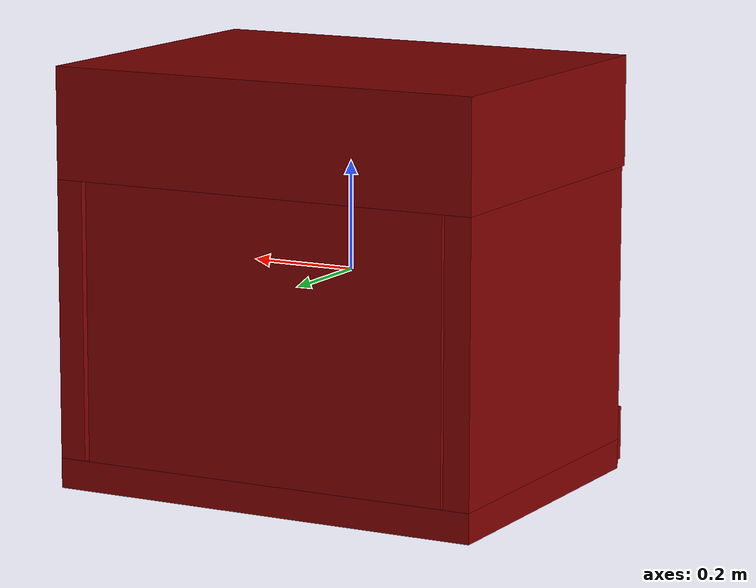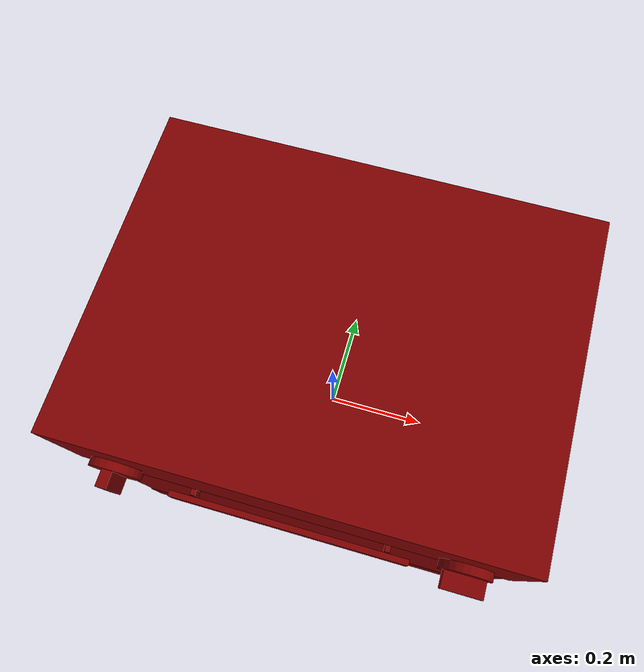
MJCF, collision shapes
<?xml version='1.0' encoding='UTF-8'?>
<mujoco model="model">
  <option timestep="0.002" gravity="0.0 0.0 -9.81"/>
  <compiler angle="radian"/>
  <asset>
    <mesh file="visuals/door.obj" name="door_vis"/>
    <mesh file="visuals/door_Clear.obj" name="door_Clear_vis"/>
    <mesh file="visuals/knob_temp.obj" name="knob_temp_vis"/>
    <mesh file="visuals/knob_time.obj" name="knob_time_vis"/>
    <mesh file="visuals/Body001.obj" name="Body001_vis"/>
    <mesh file="visuals/rack0.obj" name="rack0_vis"/>
    <texture file="visuals/T_BC001.png" name="Body001_material" type="2d"/>
    <material name="Body001_material" rgba="1 1 1 1.0" texture="Body001_material" shininess="3" specular="3"/>
    <texture file="visuals/T_BC001.png" name="door_material" type="2d"/>
    <material name="door_material" rgba="1 1 1 1.0" texture="door_material" shininess="3" specular="3"/>
    <texture file="visuals/T_BC001.png" name="door_Clear_material" type="2d"/>
    <material name="door_Clear_material" rgba="1 1 1 0.75" texture="door_Clear_material" shininess="0.4472135901451111" specular="0.3103448502657381"/>
    <texture file="visuals/T_BC001.png" name="knob_temp_material" type="2d"/>
    <material name="knob_temp_material" rgba="1 1 1 1.0" texture="knob_temp_material" shininess="1" specular="1"/>
    <texture file="visuals/T_BC001.png" name="knob_time_material" type="2d"/>
    <material name="knob_time_material" rgba="1 1 1 1.0" texture="knob_time_material" shininess="1" specular="1"/>
    <texture file="visuals/T_BC001.png" name="rack0_material" type="2d"/>
    <material name="rack0_material" rgba="1 1 1 1.0" texture="rack0_material" shininess="15" specular="15"/>
  </asset>
  <default>
    <default class="visual">
      <geom conaffinity="0" contype="0" group="1" type="mesh"/>
    </default>
    <default class="collision">
      <geom group="0" rgba="0.5 0 0 0.5"/>
    </default>
    <default class="spawn">
      <geom group="0" rgba="1 1 1 0.5" contype="0" conaffinity="0"/>
      <site group="0" rgba="1 1 1 0.5"/>
    </default>
    <default class="region">
      <geom group="1" conaffinity="0" contype="0" rgba="0 1 0 0"/>
    </default>
  </default>
  <worldbody>
    <body>
      <body name="object">
        <geom mesh="Body001_vis" type="mesh" solimp="0.998 0.998 0.001" solref="0.001 1" friction="0.95 0.3 0.1" class="visual" material="Body001_material"/>
        <geom class="collision" type="box" pos="-1.3451790437102318e-07 0.025494296103715897 0.28531554341316223" size="0.4151008427143097 0.3159112334251404 0.10254225134849548" quat="1.0 0.0 0.0 0.0"/>
        <geom class="collision" type="box" pos="-0.389858603477478 0.03126455098390579 -0.10019868612289429" size="0.02524236962199211 0.31014084815979004 0.2864428162574768" quat="1.0 0.0 0.0 0.0"/>
        <geom class="collision" type="box" pos="0.3898361623287201 0.031546588987112045 -0.10118450969457626" size="0.025264495983719826 0.3098587989807129 0.28545698523521423" quat="1.0 0.0 0.0 0.0"/>
        <geom class="collision" type="box" pos="-0.0021170482505112886 0.25647830963134766 -0.09893342107534409" size="0.3579273521900177 0.08492651581764221 0.2877080738544464" quat="1.0 0.0 0.0 0.0"/>
        <geom class="collision" type="box" pos="-1.3451790437102318e-07 -0.28395211696624756 -0.32180142402648926" size="0.41510090231895447 0.006464633625000715 0.04997134208679199" quat="1.0 0.0 0.0 0.0"/>
        <geom class="collision" type="box" pos="-1.3451790437102318e-07 0.031764399260282516 -0.3600442409515381" size="0.41510099172592163 0.3096410036087036 0.02779778651893139" quat="1.0 0.0 0.0 0.0"/>
        <geom class="collision" type="box" pos="-0.34609663486480713 -0.0572015717625618 0.03111422061920166" size="0.016483696177601814 0.1967303305864334 0.008244330063462257" quat="7.907536314633035e-07 0.0 0.0 1.0"/>
        <geom class="collision" type="box" pos="0.3470178246498108 -0.0572015717625618 -0.03945142403244972" size="0.016483673825860023 0.1967303305864334 0.01336018368601799" quat="7.907536314633035e-07 0.0 0.0 1.0"/>
        <geom class="collision" type="box" pos="-0.34609663486480713 -0.0572015717625618 -0.0687035620212555" size="0.016483696177601814 0.1967303305864334 0.005152175202965736" quat="7.907536314633035e-07 0.0 0.0 1.0"/>
        <geom class="collision" type="box" pos="0.3470178246498108 -0.0572015717625618 -0.1655743420124054" size="0.016483673825860023 0.1967303305864334 0.013375923968851566" quat="7.907536314633035e-07 0.0 0.0 1.0"/>
        <geom class="collision" type="box" pos="0.3470178246498108 -0.0572015717625618 0.03111422061920166" size="0.016483673825860023 0.1967303305864334 0.008244330063462257" quat="7.907536314633035e-07 0.0 0.0 1.0"/>
        <geom class="collision" type="box" pos="-0.34609663486480713 -0.0572015717625618 -0.03945142403244972" size="0.016483696177601814 0.1967303305864334 0.01336018368601799" quat="7.907536314633035e-07 0.0 0.0 1.0"/>
        <geom class="collision" type="box" pos="0.3470178246498108 -0.0572015717625618 -0.0687035620212555" size="0.016483673825860023 0.1967303305864334 0.005152175202965736" quat="7.907536314633035e-07 0.0 0.0 1.0"/>
        <geom class="collision" type="box" pos="-0.34609663486480713 -0.0572015717625618 -0.1655743420124054" size="0.016483696177601814 0.1967303305864334 0.013375923968851566" quat="7.907536314633035e-07 0.0 0.0 1.0"/>
        <geom class="collision" type="box" pos="0.3470178246498108 -0.0572015717625618 -0.23034867644309998" size="0.016483673825860023 0.1967303305864334 0.005326995626091957" quat="7.907536314633035e-07 0.0 0.0 1.0"/>
        <geom class="collision" type="box" pos="-0.34609663486480713 -0.0572015717625618 -0.2303524762392044" size="0.016483696177601814 0.1967303305864334 0.005323205143213272" quat="7.907536314633035e-07 0.0 0.0 1.0"/>
        <geom class="collision" type="box" pos="-0.001781865837983787 0.026348192244768143 0.16305921971797943" size="0.35844725370407104 0.3046603798866272 0.02095574140548706" quat="1.0 0.0 0.0 0.0"/>
        <body name="door">
          <joint axis="1.0 0.0 0.0" pos="-0.0005076003144495189 -0.28888482414186 -0.2668597884476185" limited="true" name="door_joint" range="0.0 1.15" type="hinge" damping="1" frictionloss="1" armature="1" stiffness="2"/>
          <geom mesh="door_vis" type="mesh" solimp="0.998 0.998 0.001" solref="0.001 1" friction="0.95 0.3 0.1" class="visual" material="door_material"/>
          <geom class="collision" type="box" pos="-0.00023717973090242594 -0.2847718298435211 -0.04473878815770149" size="0.40955543518066406 0.004289228469133377 0.222121000289917" quat="1.0 0.0 0.0 0.0"/>
          <geom class="collision" type="box" pos="-0.19127267599105835 -0.29478174448013306 0.15395866334438324" size="0.0051465448923408985 0.006952826865017414 0.015897713601589203" quat="1.0 0.0 0.0 0.0"/>
          <geom class="collision" type="box" pos="-0.00032613289658911526 -0.3099842667579651 0.15373802185058594" size="0.23404867947101593 0.005843660328537226 0.023289494216442108" quat="1.0 0.0 0.0 0.0" name="door_handle_main"/>
          <geom class="collision" type="box" pos="0.19048699736595154 -0.29478174448013306 0.15395866334438324" size="0.0051465448923408985 0.006952826865017414 0.015897713601589203" quat="1.0 0.0 0.0 0.0"/>
          <geom class="collision" type="box" pos="-0.0009091118699871004 -0.2827817499637604 -0.09039749950170517" size="0.28492963314056396 0.00500263087451458 0.14061003923416138" quat="1.0 0.0 0.0 0.0"/>
          <geom class="collision" type="box" pos="-0.0005076003144495189 -0.2863512933254242 -0.04473878815770149" size="0.40955543518066406 0.002533530816435814 0.222121000289917" quat="1.0 0.0 0.0 0.0" name="door_main"/>
          <body name="door_Clear">
            <geom mesh="door_Clear_vis" type="mesh" solimp="0.998 0.998 0.001" solref="0.001 1" friction="0.95 0.3 0.1" class="visual" material="door_Clear_material"/>
            <geom class="collision" type="box" pos="-0.0009091118699871004 -0.2827817499637604 -0.09039749950170517" size="0.28492963314056396 0.00500263087451458 0.14061003923416138" quat="1.0 0.0 0.0 0.0"/>
          </body>
        </body>
        <body name="knob_temp">
          <joint axis="0.0 1.0 0.0" pos="0.31887105107307434 -0.31014472246170044 0.2622601389884949" limited="true" name="knob_temp_joint" range="0.0 3.2288591161895095" type="hinge" damping="0.05" frictionloss="0.75" armature="1"/>
          <geom mesh="knob_temp_vis" type="mesh" solimp="0.998 0.998 0.001" solref="0.001 1" friction="0.95 0.3 0.1" class="visual" material="knob_temp_material"/>
          <geom class="collision" type="cylinder" pos="0.3186452388763428 -0.2997737228870392 0.2626839578151703" size="0.04734976962208748 0.008006248623132706" quat="0.7071067094802856 0.70710688829422 0.0 0.0" friction="100 0.5 0.01"/>
          <geom class="collision" type="box" pos="0.3186452388763428 -0.323250412940979 0.2626839578151703" size="0.010048809461295605 0.016543766483664513 0.037072762846946716" quat="0.7071068286895752 -4.750302551315144e-08 -0.7071067094802856 -4.7503014855010406e-08" name="knob_temp_main" friction="100 0.5 0.01"/>
        </body>
        <body name="knob_time">
          <joint axis="0.0 1.0 0.0" pos="-0.31210535764694214 -0.3145160973072052 0.26181113719940186" limited="true" name="knob_time_joint" range="0.0 3.9269908169872414" type="hinge" damping="0.05" frictionloss="0.75" armature="1"/>
          <geom mesh="knob_time_vis" type="mesh" solimp="0.998 0.998 0.001" solref="0.001 1" friction="0.95 0.3 0.1" class="visual" material="knob_time_material"/>
          <geom class="collision" type="cylinder" pos="-0.31210535764694214 -0.2997737228870392 0.26181113719940186" size="0.04734976962208748 0.008006248623132706" quat="0.7071067094802856 0.70710688829422 0.0 0.0" friction="100 0.5 0.01"/>
          <geom class="collision" type="box" pos="-0.31210535764694214 -0.323250412940979 0.26181113719940186" size="0.010048809461295605 0.016543766483664513 0.037072762846946716" quat="1.0 0.0 0.0 0.0" name="knob_time_main" friction="100 0.5 0.01"/>
        </body>
        <body name="rack0">
          <geom class="region" name="reg_rack0" type="box" pos="0.0017467588186264038 -0.04962657392024994 0.04416247829794884" size="0.280657319188118 0.18857452070713043 0.09137341549992561"/>
          <joint axis="0.0 -1.0 0.0" pos="0.003805875778198242 -0.04978299140930176 -0.05748503655195236" limited="true" name="rack0_joint" range="0.0 0.3" type="slide" damping="1" frictionloss="1" armature=".01" stiffness="0.05"/>
          <geom mesh="rack0_vis" type="mesh" solimp="0.998 0.998 0.001" solref="0.001 1" friction="0.95 0.3 0.1" class="visual" material="rack0_material"/>
          <geom class="collision" type="box" pos="0.0005183923640288413 -0.05042119324207306 -0.05947843939065933" size="0.32854729890823364 0.19289615750312805 0.003365962067618966" quat="1.0 0.0 0.0 0.0"/>
        </body>
        <geom class="region" name="reg_int" type="box" pos="-0.0011357814073562622 -0.057469576597213745 -0.09507669508457184" size="0.349643496632576 0.2089429030418396 0.2233057597875595"/>
        <geom class="region" name="reg_main" type="box" pos="0.0 0.025024637579917908 0.0" size="0.4161352643966675 0.3173817524909973 0.3888583014011383"/>
      </body>
    </body>
  </worldbody>
  <actuator>
    <motor name="door_joint_actuator" joint="door_joint" gear="30"/>
    <motor name="knob_temp_joint_actuator" joint="knob_temp_joint" gear="10"/>
    <motor name="knob_time_joint_actuator" joint="knob_time_joint" gear="10"/>
    <motor name="rack0_joint_actuator" joint="rack0_joint" gear="15"/>
  </actuator>
</mujoco>
